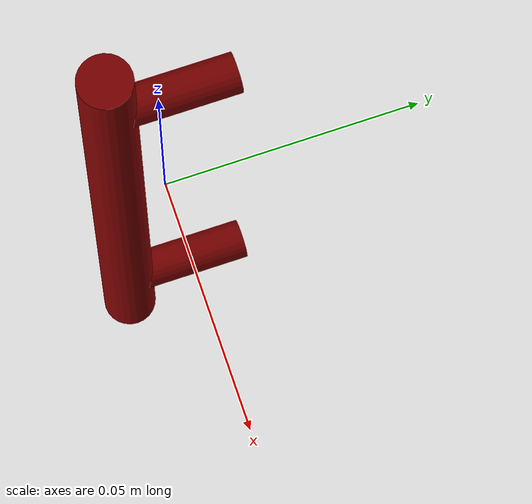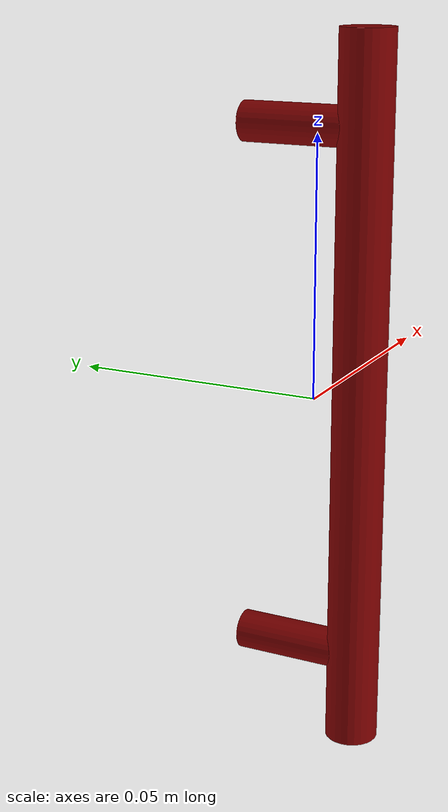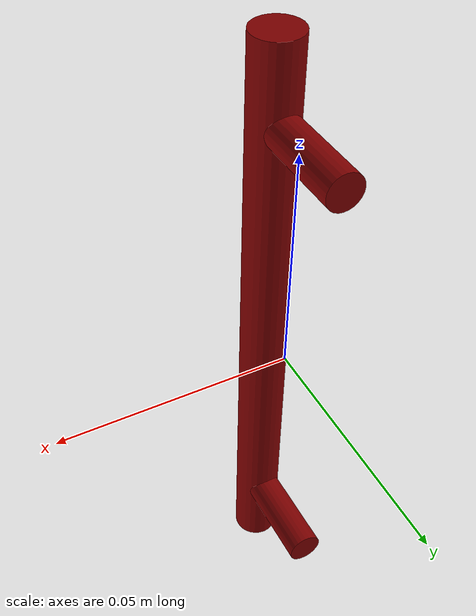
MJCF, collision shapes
<?xml version='1.0' encoding='UTF-8'?>
<mujoco model="model">
  <option timestep="0.002" gravity="0.0 0.0 -9.81"/>
  <compiler angle="radian"/>
  <asset>
    <mesh file="visuals/CabinetHandle005.obj" name="CabinetHandle005_vis"/>
    <texture file="visuals/T_BC001.png" name="tex" type="2d"/>
    <material name="mat" rgba="1 1 1 1.0" texture="tex" shininess="0.4472135901451111" specular="0.3103448502657381"/>
  </asset>
  <default>
    <default class="visual">
      <geom conaffinity="0" contype="0" group="1" type="mesh"/>
    </default>
    <default class="collision">
      <geom group="0" rgba="0.5 0 0 0.5" density="1.0" solref="0.004 1" solimp="0.998 0.998 0.001"/>
    </default>
    <default class="spawn">
      <geom group="0" rgba="1 1 1 0.5" contype="0" conaffinity="0"/>
      <site group="0" rgba="1 1 1 0.5"/>
    </default>
    <default class="region">
      <geom group="1" conaffinity="0" contype="0" rgba="0 1 0 0" mass="0"/>
    </default>
  </default>
  <worldbody>
    <body>
      <body name="object">
        <geom mesh="CabinetHandle005_vis" type="mesh" solimp="0.998 0.998 0.001" solref="0.001 1" friction="0.95 0.3 0.1" class="visual" material="mat"/>
        <geom type="cylinder" pos="-6.226851673174494e-11 -0.009232440032064915 4.108364759503047e-09" size="0.0051431008614599705 0.06886288523674011" quat="1.0 0.0 0.0 0.0" class="collision"/>
        <geom type="cylinder" pos="-4.609402790012318e-11 0.0033830474130809307 0.05145308002829552" size="0.0038071603048592806 0.011198082007467747" quat="0.7071067094802856 0.7071068286895752 0.0 0.0" class="collision"/>
        <geom type="cylinder" pos="-4.609402790012318e-11 0.003369647776708007 -0.05092586204409599" size="0.0038071603048592806 0.011211480014026165" quat="0.7071067094802856 0.7071068286895752 0.0 0.0" class="collision"/>
        <geom class="region" name="reg_main" type="box" pos="-4.307366907596588e-09 4.98257577419281e-08 3.725290298461914e-09" size="0.006384801421314478 0.015581078663468362 0.06986288523674011"/>
      </body>
    </body>
  </worldbody>
  <actuator/>
</mujoco>
